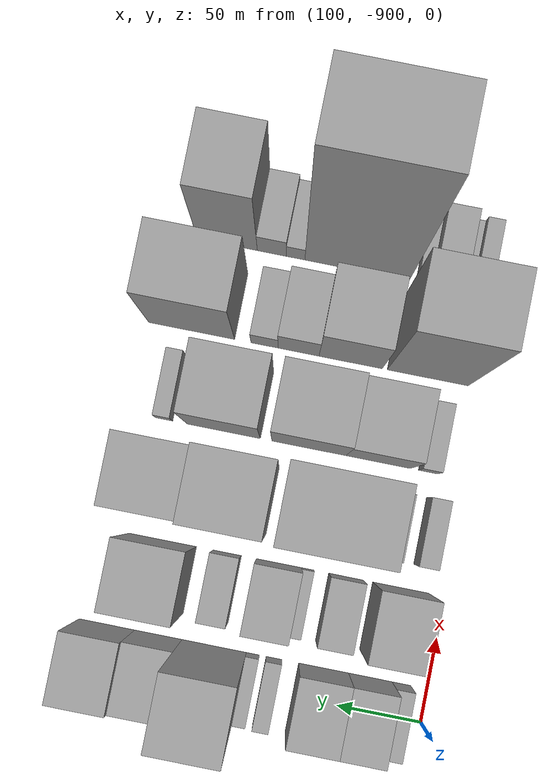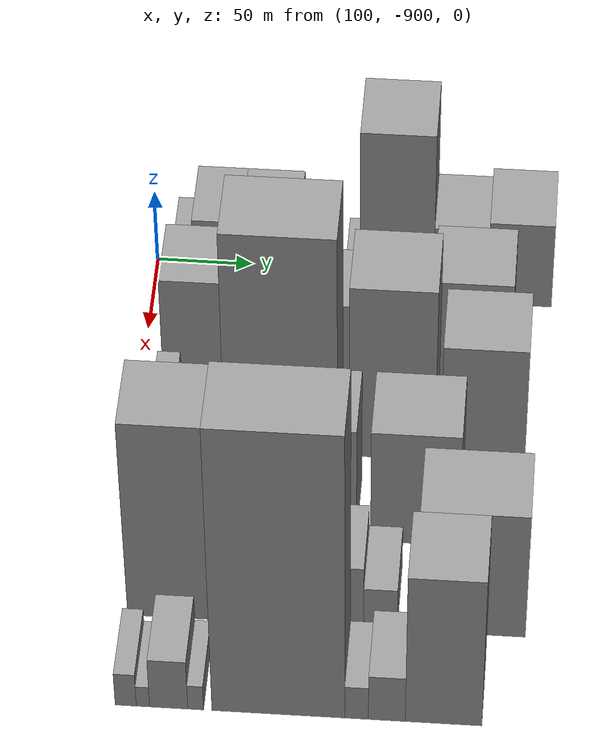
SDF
<sdf version="1.6">
 <world name="default">
  <model name="building_1">
   <static>1</static>
   <pose>100.0000 -884.4774 0 0.000000 0.000000 0.000000</pose>
   <link name="link">
    <pose>0 0 13.50 0 0 0</pose>
    <collision name="collision"><geometry><box><size>40.0000 11.0452 27.0000</size></box></geometry></collision>
    <visual name="visual">
     <cast_shadows>0</cast_shadows>
     <geometry><box><size>40.0000 11.0452 27.0000</size></box></geometry>
     <material>
      <script>
       <uri>model://grey_wall/materials/scripts</uri>
       <uri>model://grey_wall/materials/textures</uri>
       <name>vrc/grey_wall</name>
      </script>
     </material>
    </visual>
   </link>
  </model>
  <model name="building_2">
   <static>1</static>
   <pose>100.0000 -865.9473 0 0.000000 0.000000 0.000000</pose>
   <link name="link">
    <pose>0 0 25.50 0 0 0</pose>
    <collision name="collision"><geometry><box><size>40.0000 26.0150 51.0000</size></box></geometry></collision>
    <visual name="visual">
     <cast_shadows>0</cast_shadows>
     <geometry><box><size>40.0000 26.0150 51.0000</size></box></geometry>
     <material>
      <script>
       <uri>model://grey_wall/materials/scripts</uri>
       <uri>model://grey_wall/materials/textures</uri>
       <name>vrc/grey_wall</name>
      </script>
     </material>
    </visual>
   </link>
  </model>
  <model name="building_3">
   <static>1</static>
   <pose>100.0000 -837.9995 0 0.000000 0.000000 0.000000</pose>
   <link name="link">
    <pose>0 0 25.50 0 0 0</pose>
    <collision name="collision"><geometry><box><size>40.0000 29.8806 51.0000</size></box></geometry></collision>
    <visual name="visual">
     <cast_shadows>0</cast_shadows>
     <geometry><box><size>40.0000 29.8806 51.0000</size></box></geometry>
     <material>
      <script>
       <uri>model://grey_wall/materials/scripts</uri>
       <uri>model://grey_wall/materials/textures</uri>
       <name>vrc/grey_wall</name>
      </script>
     </material>
    </visual>
   </link>
  </model>
  <model name="building_4">
   <static>1</static>
   <pose>100.0000 -808.3161 0 0.000000 0.000000 0.000000</pose>
   <link name="link">
    <pose>0 0 10.50 0 0 0</pose>
    <collision name="collision"><geometry><box><size>40.0000 9.4863 21.0000</size></box></geometry></collision>
    <visual name="visual">
     <cast_shadows>0</cast_shadows>
     <geometry><box><size>40.0000 9.4863 21.0000</size></box></geometry>
     <material>
      <script>
       <uri>model://grey_wall/materials/scripts</uri>
       <uri>model://grey_wall/materials/textures</uri>
       <name>vrc/grey_wall</name>
      </script>
     </material>
    </visual>
   </link>
  </model>
  <model name="building_5">
   <static>1</static>
   <pose>100.0000 -795.6300 0 0.000000 0.000000 0.000000</pose>
   <link name="link">
    <pose>0 0 9.00 0 0 0</pose>
    <collision name="collision"><geometry><box><size>40.0000 7.8860 18.0000</size></box></geometry></collision>
    <visual name="visual">
     <cast_shadows>0</cast_shadows>
     <geometry><box><size>40.0000 7.8860 18.0000</size></box></geometry>
     <material>
      <script>
       <uri>model://grey_wall/materials/scripts</uri>
       <uri>model://grey_wall/materials/textures</uri>
       <name>vrc/grey_wall</name>
      </script>
     </material>
    </visual>
   </link>
  </model>
  <model name="building_6">
   <static>1</static>
   <pose>100.0000 -772.4363 0 0.000000 0.000000 0.000000</pose>
   <link name="link">
    <pose>0 0 60.00 0 0 0</pose>
    <collision name="collision"><geometry><box><size>40.0000 38.5014 120.0000</size></box></geometry></collision>
    <visual name="visual">
     <cast_shadows>0</cast_shadows>
     <geometry><box><size>40.0000 38.5014 120.0000</size></box></geometry>
     <material>
      <script>
       <uri>model://grey_wall/materials/scripts</uri>
       <uri>model://grey_wall/materials/textures</uri>
       <name>vrc/grey_wall</name>
      </script>
     </material>
    </visual>
   </link>
  </model>
  <model name="building_7">
   <static>1</static>
   <pose>100.0000 -739.0061 0 0.000000 0.000000 0.000000</pose>
   <link name="link">
    <pose>0 0 27.00 0 0 0</pose>
    <collision name="collision"><geometry><box><size>40.0000 28.3591 54.0000</size></box></geometry></collision>
    <visual name="visual">
     <cast_shadows>0</cast_shadows>
     <geometry><box><size>40.0000 28.3591 54.0000</size></box></geometry>
     <material>
      <script>
       <uri>model://grey_wall/materials/scripts</uri>
       <uri>model://grey_wall/materials/textures</uri>
       <name>vrc/grey_wall</name>
      </script>
     </material>
    </visual>
   </link>
  </model>
  <model name="building_8">
   <static>1</static>
   <pose>100.0000 -708.1347 0 0.000000 0.000000 0.000000</pose>
   <link name="link">
    <pose>0 0 30.00 0 0 0</pose>
    <collision name="collision"><geometry><box><size>40.0000 33.3837 60.0000</size></box></geometry></collision>
    <visual name="visual">
     <cast_shadows>0</cast_shadows>
     <geometry><box><size>40.0000 33.3837 60.0000</size></box></geometry>
     <material>
      <script>
       <uri>model://grey_wall/materials/scripts</uri>
       <uri>model://grey_wall/materials/textures</uri>
       <name>vrc/grey_wall</name>
      </script>
     </material>
    </visual>
   </link>
  </model>
  <model name="building_49">
   <static>1</static>
   <pose>155.0000 -873.2870 0 0.000000 0.000000 0.000000</pose>
   <link name="link">
    <pose>0 0 31.50 0 0 0</pose>
    <collision name="collision"><geometry><box><size>40.0000 33.4260 63.0000</size></box></geometry></collision>
    <visual name="visual">
     <cast_shadows>0</cast_shadows>
     <geometry><box><size>40.0000 33.4260 63.0000</size></box></geometry>
     <material>
      <script>
       <uri>model://grey_wall/materials/scripts</uri>
       <uri>model://grey_wall/materials/textures</uri>
       <name>vrc/grey_wall</name>
      </script>
     </material>
    </visual>
   </link>
  </model>
  <model name="building_50">
   <static>1</static>
   <pose>155.0000 -840.3611 0 0.000000 0.000000 0.000000</pose>
   <link name="link">
    <pose>0 0 18.00 0 0 0</pose>
    <collision name="collision"><geometry><box><size>40.0000 20.4257 36.0000</size></box></geometry></collision>
    <visual name="visual">
     <cast_shadows>0</cast_shadows>
     <geometry><box><size>40.0000 20.4257 36.0000</size></box></geometry>
     <material>
      <script>
       <uri>model://grey_wall/materials/scripts</uri>
       <uri>model://grey_wall/materials/textures</uri>
       <name>vrc/grey_wall</name>
      </script>
     </material>
    </visual>
   </link>
  </model>
  <model name="building_51">
   <static>1</static>
   <pose>155.0000 -817.4871 0 0.000000 0.000000 0.000000</pose>
   <link name="link">
    <pose>0 0 7.50 0 0 0</pose>
    <collision name="collision"><geometry><box><size>40.0000 7.3223 15.0000</size></box></geometry></collision>
    <visual name="visual">
     <cast_shadows>0</cast_shadows>
     <geometry><box><size>40.0000 7.3223 15.0000</size></box></geometry>
     <material>
      <script>
       <uri>model://grey_wall/materials/scripts</uri>
       <uri>model://grey_wall/materials/textures</uri>
       <name>vrc/grey_wall</name>
      </script>
     </material>
    </visual>
   </link>
  </model>
  <model name="building_52">
   <static>1</static>
   <pose>155.0000 -800.2898 0 0.000000 0.000000 0.000000</pose>
   <link name="link">
    <pose>0 0 25.50 0 0 0</pose>
    <collision name="collision"><geometry><box><size>40.0000 27.0723 51.0000</size></box></geometry></collision>
    <visual name="visual">
     <cast_shadows>0</cast_shadows>
     <geometry><box><size>40.0000 27.0723 51.0000</size></box></geometry>
     <material>
      <script>
       <uri>model://grey_wall/materials/scripts</uri>
       <uri>model://grey_wall/materials/textures</uri>
       <name>vrc/grey_wall</name>
      </script>
     </material>
    </visual>
   </link>
  </model>
  <model name="building_53">
   <static>1</static>
   <pose>155.0000 -769.2346 0 0.000000 0.000000 0.000000</pose>
   <link name="link">
    <pose>0 0 16.50 0 0 0</pose>
    <collision name="collision"><geometry><box><size>40.0000 17.0382 33.0000</size></box></geometry></collision>
    <visual name="visual">
     <cast_shadows>0</cast_shadows>
     <geometry><box><size>40.0000 17.0382 33.0000</size></box></geometry>
     <material>
      <script>
       <uri>model://grey_wall/materials/scripts</uri>
       <uri>model://grey_wall/materials/textures</uri>
       <name>vrc/grey_wall</name>
      </script>
     </material>
    </visual>
   </link>
  </model>
  <model name="building_54">
   <static>1</static>
   <pose>155.0000 -730.5223 0 0.000000 0.000000 0.000000</pose>
   <link name="link">
    <pose>0 0 36.00 0 0 0</pose>
    <collision name="collision"><geometry><box><size>40.0000 40.3863 72.0000</size></box></geometry></collision>
    <visual name="visual">
     <cast_shadows>0</cast_shadows>
     <geometry><box><size>40.0000 40.3863 72.0000</size></box></geometry>
     <material>
      <script>
       <uri>model://grey_wall/materials/scripts</uri>
       <uri>model://grey_wall/materials/textures</uri>
       <name>vrc/grey_wall</name>
      </script>
     </material>
    </visual>
   </link>
  </model>
  <model name="building_94">
   <static>1</static>
   <pose>210.0000 -884.1541 0 0.000000 0.000000 0.000000</pose>
   <link name="link">
    <pose>0 0 13.50 0 0 0</pose>
    <collision name="collision"><geometry><box><size>40.0000 11.6917 27.0000</size></box></geometry></collision>
    <visual name="visual">
     <cast_shadows>0</cast_shadows>
     <geometry><box><size>40.0000 11.6917 27.0000</size></box></geometry>
     <material>
      <script>
       <uri>model://grey_wall/materials/scripts</uri>
       <uri>model://grey_wall/materials/textures</uri>
       <name>vrc/grey_wall</name>
      </script>
     </material>
    </visual>
   </link>
  </model>
  <model name="building_95">
   <static>1</static>
   <pose>210.0000 -866.5530 0 0.000000 0.000000 0.000000</pose>
   <link name="link">
    <pose>0 0 9.00 0 0 0</pose>
    <collision name="collision"><geometry><box><size>40.0000 7.5105 18.0000</size></box></geometry></collision>
    <visual name="visual">
     <cast_shadows>0</cast_shadows>
     <geometry><box><size>40.0000 7.5105 18.0000</size></box></geometry>
     <material>
      <script>
       <uri>model://grey_wall/materials/scripts</uri>
       <uri>model://grey_wall/materials/textures</uri>
       <name>vrc/grey_wall</name>
      </script>
     </material>
    </visual>
   </link>
  </model>
  <model name="building_96">
   <static>1</static>
   <pose>210.0000 -824.1190 0 0.000000 0.000000 0.000000</pose>
   <link name="link">
    <pose>0 0 78.00 0 0 0</pose>
    <collision name="collision"><geometry><box><size>40.0000 57.3577 156.0000</size></box></geometry></collision>
    <visual name="visual">
     <cast_shadows>0</cast_shadows>
     <geometry><box><size>40.0000 57.3577 156.0000</size></box></geometry>
     <material>
      <script>
       <uri>model://grey_wall/materials/scripts</uri>
       <uri>model://grey_wall/materials/textures</uri>
       <name>vrc/grey_wall</name>
      </script>
     </material>
    </visual>
   </link>
  </model>
  <model name="building_97">
   <static>1</static>
   <pose>210.0000 -767.8719 0 0.000000 0.000000 0.000000</pose>
   <link name="link">
    <pose>0 0 61.50 0 0 0</pose>
    <collision name="collision"><geometry><box><size>40.0000 43.1364 123.0000</size></box></geometry></collision>
    <visual name="visual">
     <cast_shadows>0</cast_shadows>
     <geometry><box><size>40.0000 43.1364 123.0000</size></box></geometry>
     <material>
      <script>
       <uri>model://grey_wall/materials/scripts</uri>
       <uri>model://grey_wall/materials/textures</uri>
       <name>vrc/grey_wall</name>
      </script>
     </material>
    </visual>
   </link>
  </model>
  <model name="building_98">
   <static>1</static>
   <pose>210.0000 -722.1427 0 0.000000 0.000000 0.000000</pose>
   <link name="link">
    <pose>0 0 42.00 0 0 0</pose>
    <collision name="collision"><geometry><box><size>40.0000 42.3221 84.0000</size></box></geometry></collision>
    <visual name="visual">
     <cast_shadows>0</cast_shadows>
     <geometry><box><size>40.0000 42.3221 84.0000</size></box></geometry>
     <material>
      <script>
       <uri>model://grey_wall/materials/scripts</uri>
       <uri>model://grey_wall/materials/textures</uri>
       <name>vrc/grey_wall</name>
      </script>
     </material>
    </visual>
   </link>
  </model>
  <model name="building_144">
   <static>1</static>
   <pose>265.0000 -876.2543 0 0.000000 0.000000 0.000000</pose>
   <link name="link">
    <pose>0 0 12.00 0 0 0</pose>
    <collision name="collision"><geometry><box><size>40.0000 11.4914 24.0000</size></box></geometry></collision>
    <visual name="visual">
     <cast_shadows>0</cast_shadows>
     <geometry><box><size>40.0000 11.4914 24.0000</size></box></geometry>
     <material>
      <script>
       <uri>model://grey_wall/materials/scripts</uri>
       <uri>model://grey_wall/materials/textures</uri>
       <name>vrc/grey_wall</name>
      </script>
     </material>
    </visual>
   </link>
  </model>
  <model name="building_145">
   <static>1</static>
   <pose>265.0000 -846.0713 0 0.000000 0.000000 0.000000</pose>
   <link name="link">
    <pose>0 0 36.00 0 0 0</pose>
    <collision name="collision"><geometry><box><size>40.0000 38.8746 72.0000</size></box></geometry></collision>
    <visual name="visual">
     <cast_shadows>0</cast_shadows>
     <geometry><box><size>40.0000 38.8746 72.0000</size></box></geometry>
     <material>
      <script>
       <uri>model://grey_wall/materials/scripts</uri>
       <uri>model://grey_wall/materials/textures</uri>
       <name>vrc/grey_wall</name>
      </script>
     </material>
    </visual>
   </link>
  </model>
  <model name="building_146">
   <static>1</static>
   <pose>265.0000 -804.3601 0 0.000000 0.000000 0.000000</pose>
   <link name="link">
    <pose>0 0 40.50 0 0 0</pose>
    <collision name="collision"><geometry><box><size>40.0000 44.5479 81.0000</size></box></geometry></collision>
    <visual name="visual">
     <cast_shadows>0</cast_shadows>
     <geometry><box><size>40.0000 44.5479 81.0000</size></box></geometry>
     <material>
      <script>
       <uri>model://grey_wall/materials/scripts</uri>
       <uri>model://grey_wall/materials/textures</uri>
       <name>vrc/grey_wall</name>
      </script>
     </material>
    </visual>
   </link>
  </model>
  <model name="building_147">
   <static>1</static>
   <pose>265.0000 -753.0333 0 0.000000 0.000000 0.000000</pose>
   <link name="link">
    <pose>0 0 40.50 0 0 0</pose>
    <collision name="collision"><geometry><box><size>40.0000 44.1056 81.0000</size></box></geometry></collision>
    <visual name="visual">
     <cast_shadows>0</cast_shadows>
     <geometry><box><size>40.0000 44.1056 81.0000</size></box></geometry>
     <material>
      <script>
       <uri>model://grey_wall/materials/scripts</uri>
       <uri>model://grey_wall/materials/textures</uri>
       <name>vrc/grey_wall</name>
      </script>
     </material>
    </visual>
   </link>
  </model>
  <model name="building_148">
   <static>1</static>
   <pose>265.0000 -716.9678 0 0.000000 0.000000 0.000000</pose>
   <link name="link">
    <pose>0 0 10.50 0 0 0</pose>
    <collision name="collision"><geometry><box><size>40.0000 10.0254 21.0000</size></box></geometry></collision>
    <visual name="visual">
     <cast_shadows>0</cast_shadows>
     <geometry><box><size>40.0000 10.0254 21.0000</size></box></geometry>
     <material>
      <script>
       <uri>model://grey_wall/materials/scripts</uri>
       <uri>model://grey_wall/materials/textures</uri>
       <name>vrc/grey_wall</name>
      </script>
     </material>
    </visual>
   </link>
  </model>
  <model name="building_193">
   <static>1</static>
   <pose>320.0000 -865.4779 0 0.000000 0.000000 0.000000</pose>
   <link name="link">
    <pose>0 0 70.50 0 0 0</pose>
    <collision name="collision"><geometry><box><size>40.0000 49.0442 141.0000</size></box></geometry></collision>
    <visual name="visual">
     <cast_shadows>0</cast_shadows>
     <geometry><box><size>40.0000 49.0442 141.0000</size></box></geometry>
     <material>
      <script>
       <uri>model://grey_wall/materials/scripts</uri>
       <uri>model://grey_wall/materials/textures</uri>
       <name>vrc/grey_wall</name>
      </script>
     </material>
    </visual>
   </link>
  </model>
  <model name="building_194">
   <static>1</static>
   <pose>320.0000 -818.7415 0 0.000000 0.000000 0.000000</pose>
   <link name="link">
    <pose>0 0 37.50 0 0 0</pose>
    <collision name="collision"><geometry><box><size>40.0000 38.4287 75.0000</size></box></geometry></collision>
    <visual name="visual">
     <cast_shadows>0</cast_shadows>
     <geometry><box><size>40.0000 38.4287 75.0000</size></box></geometry>
     <material>
      <script>
       <uri>model://grey_wall/materials/scripts</uri>
       <uri>model://grey_wall/materials/textures</uri>
       <name>vrc/grey_wall</name>
      </script>
     </material>
    </visual>
   </link>
  </model>
  <model name="building_195">
   <static>1</static>
   <pose>320.0000 -787.1270 0 0.000000 0.000000 0.000000</pose>
   <link name="link">
    <pose>0 0 22.50 0 0 0</pose>
    <collision name="collision"><geometry><box><size>40.0000 24.8002 45.0000</size></box></geometry></collision>
    <visual name="visual">
     <cast_shadows>0</cast_shadows>
     <geometry><box><size>40.0000 24.8002 45.0000</size></box></geometry>
     <material>
      <script>
       <uri>model://grey_wall/materials/scripts</uri>
       <uri>model://grey_wall/materials/textures</uri>
       <name>vrc/grey_wall</name>
      </script>
     </material>
    </visual>
   </link>
  </model>
  <model name="building_196">
   <static>1</static>
   <pose>320.0000 -766.5515 0 0.000000 0.000000 0.000000</pose>
   <link name="link">
    <pose>0 0 15.00 0 0 0</pose>
    <collision name="collision"><geometry><box><size>40.0000 16.3509 30.0000</size></box></geometry></collision>
    <visual name="visual">
     <cast_shadows>0</cast_shadows>
     <geometry><box><size>40.0000 16.3509 30.0000</size></box></geometry>
     <material>
      <script>
       <uri>model://grey_wall/materials/scripts</uri>
       <uri>model://grey_wall/materials/textures</uri>
       <name>vrc/grey_wall</name>
      </script>
     </material>
    </visual>
   </link>
  </model>
  <model name="building_197">
   <static>1</static>
   <pose>320.0000 -722.2987 0 0.000000 0.000000 0.000000</pose>
   <link name="link">
    <pose>0 0 45.00 0 0 0</pose>
    <collision name="collision"><geometry><box><size>40.0000 52.1547 90.0000</size></box></geometry></collision>
    <visual name="visual">
     <cast_shadows>0</cast_shadows>
     <geometry><box><size>40.0000 52.1547 90.0000</size></box></geometry>
     <material>
      <script>
       <uri>model://grey_wall/materials/scripts</uri>
       <uri>model://grey_wall/materials/textures</uri>
       <name>vrc/grey_wall</name>
      </script>
     </material>
    </visual>
   </link>
  </model>
  <model name="building_246">
   <static>1</static>
   <pose>375.0000 -884.9548 0 0.000000 0.000000 0.000000</pose>
   <link name="link">
    <pose>0 0 12.00 0 0 0</pose>
    <collision name="collision"><geometry><box><size>40.0000 10.0903 24.0000</size></box></geometry></collision>
    <visual name="visual">
     <cast_shadows>0</cast_shadows>
     <geometry><box><size>40.0000 10.0903 24.0000</size></box></geometry>
     <material>
      <script>
       <uri>model://grey_wall/materials/scripts</uri>
       <uri>model://grey_wall/materials/textures</uri>
       <name>vrc/grey_wall</name>
      </script>
     </material>
    </visual>
   </link>
  </model>
  <model name="building_247">
   <static>1</static>
   <pose>375.0000 -876.7147 0 0.000000 0.000000 0.000000</pose>
   <link name="link">
    <pose>0 0 7.50 0 0 0</pose>
    <collision name="collision"><geometry><box><size>40.0000 6.3900 15.0000</size></box></geometry></collision>
    <visual name="visual">
     <cast_shadows>0</cast_shadows>
     <geometry><box><size>40.0000 6.3900 15.0000</size></box></geometry>
     <material>
      <script>
       <uri>model://grey_wall/materials/scripts</uri>
       <uri>model://grey_wall/materials/textures</uri>
       <name>vrc/grey_wall</name>
      </script>
     </material>
    </visual>
   </link>
  </model>
  <model name="building_248">
   <static>1</static>
   <pose>375.0000 -864.3606 0 0.000000 0.000000 0.000000</pose>
   <link name="link">
    <pose>0 0 18.00 0 0 0</pose>
    <collision name="collision"><geometry><box><size>40.0000 18.3182 36.0000</size></box></geometry></collision>
    <visual name="visual">
     <cast_shadows>0</cast_shadows>
     <geometry><box><size>40.0000 18.3182 36.0000</size></box></geometry>
     <material>
      <script>
       <uri>model://grey_wall/materials/scripts</uri>
       <uri>model://grey_wall/materials/textures</uri>
       <name>vrc/grey_wall</name>
      </script>
     </material>
    </visual>
   </link>
  </model>
  <model name="building_249">
   <static>1</static>
   <pose>375.0000 -851.4021 0 0.000000 0.000000 0.000000</pose>
   <link name="link">
    <pose>0 0 9.00 0 0 0</pose>
    <collision name="collision"><geometry><box><size>40.0000 7.5988 18.0000</size></box></geometry></collision>
    <visual name="visual">
     <cast_shadows>0</cast_shadows>
     <geometry><box><size>40.0000 7.5988 18.0000</size></box></geometry>
     <material>
      <script>
       <uri>model://grey_wall/materials/scripts</uri>
       <uri>model://grey_wall/materials/textures</uri>
       <name>vrc/grey_wall</name>
      </script>
     </material>
    </visual>
   </link>
  </model>
  <model name="building_250">
   <static>1</static>
   <pose>375.0000 -811.8280 0 0.000000 0.000000 0.000000</pose>
   <link name="link">
    <pose>0 0 102.00 0 0 0</pose>
    <collision name="collision"><geometry><box><size>40.0000 63.5494 204.0000</size></box></geometry></collision>
    <visual name="visual">
     <cast_shadows>0</cast_shadows>
     <geometry><box><size>40.0000 63.5494 204.0000</size></box></geometry>
     <material>
      <script>
       <uri>model://grey_wall/materials/scripts</uri>
       <uri>model://grey_wall/materials/textures</uri>
       <name>vrc/grey_wall</name>
      </script>
     </material>
    </visual>
   </link>
  </model>
  <model name="building_251">
   <static>1</static>
   <pose>375.0000 -774.4035 0 0.000000 0.000000 0.000000</pose>
   <link name="link">
    <pose>0 0 12.00 0 0 0</pose>
    <collision name="collision"><geometry><box><size>40.0000 11.2998 24.0000</size></box></geometry></collision>
    <visual name="visual">
     <cast_shadows>0</cast_shadows>
     <geometry><box><size>40.0000 11.2998 24.0000</size></box></geometry>
     <material>
      <script>
       <uri>model://grey_wall/materials/scripts</uri>
       <uri>model://grey_wall/materials/textures</uri>
       <name>vrc/grey_wall</name>
      </script>
     </material>
    </visual>
   </link>
  </model>
  <model name="building_252">
   <static>1</static>
   <pose>375.0000 -759.9258 0 0.000000 0.000000 0.000000</pose>
   <link name="link">
    <pose>0 0 16.50 0 0 0</pose>
    <collision name="collision"><geometry><box><size>40.0000 17.6556 33.0000</size></box></geometry></collision>
    <visual name="visual">
     <cast_shadows>0</cast_shadows>
     <geometry><box><size>40.0000 17.6556 33.0000</size></box></geometry>
     <material>
      <script>
       <uri>model://grey_wall/materials/scripts</uri>
       <uri>model://grey_wall/materials/textures</uri>
       <name>vrc/grey_wall</name>
      </script>
     </material>
    </visual>
   </link>
  </model>
  <model name="building_253">
   <static>1</static>
   <pose>375.0000 -732.8619 0 0.000000 0.000000 0.000000</pose>
   <link name="link">
    <pose>0 0 54.00 0 0 0</pose>
    <collision name="collision"><geometry><box><size>40.0000 36.4720 108.0000</size></box></geometry></collision>
    <visual name="visual">
     <cast_shadows>0</cast_shadows>
     <geometry><box><size>40.0000 36.4720 108.0000</size></box></geometry>
     <material>
      <script>
       <uri>model://grey_wall/materials/scripts</uri>
       <uri>model://grey_wall/materials/textures</uri>
       <name>vrc/grey_wall</name>
      </script>
     </material>
    </visual>
   </link>
  </model>
 </world>
</sdf>
